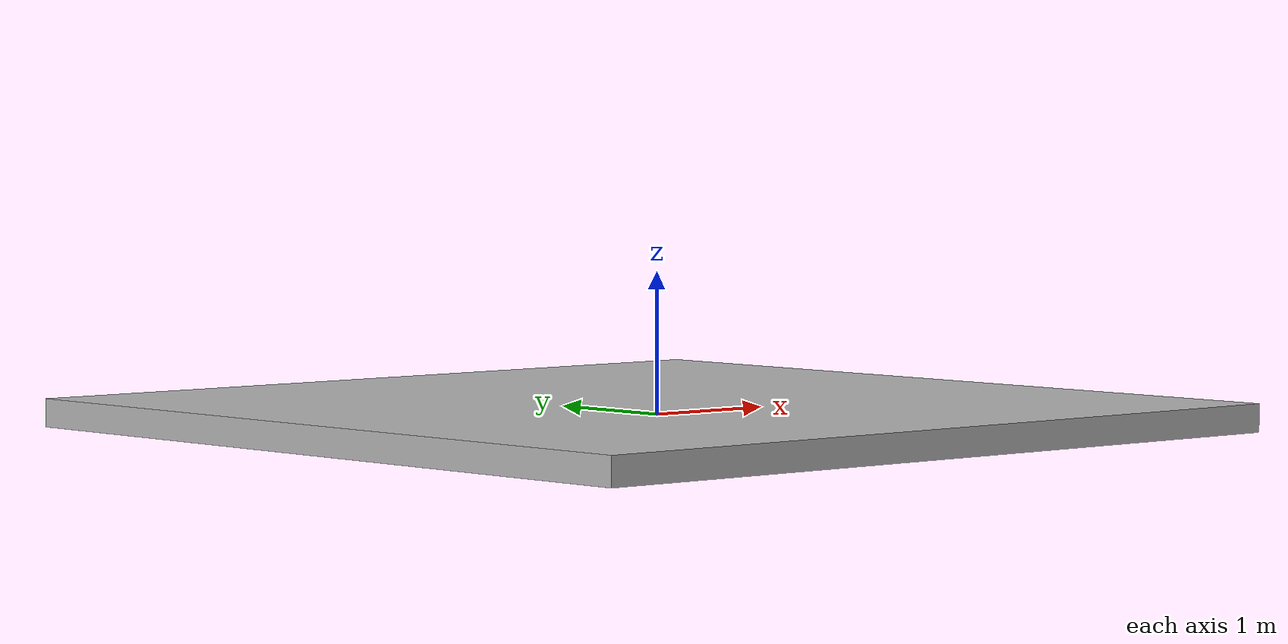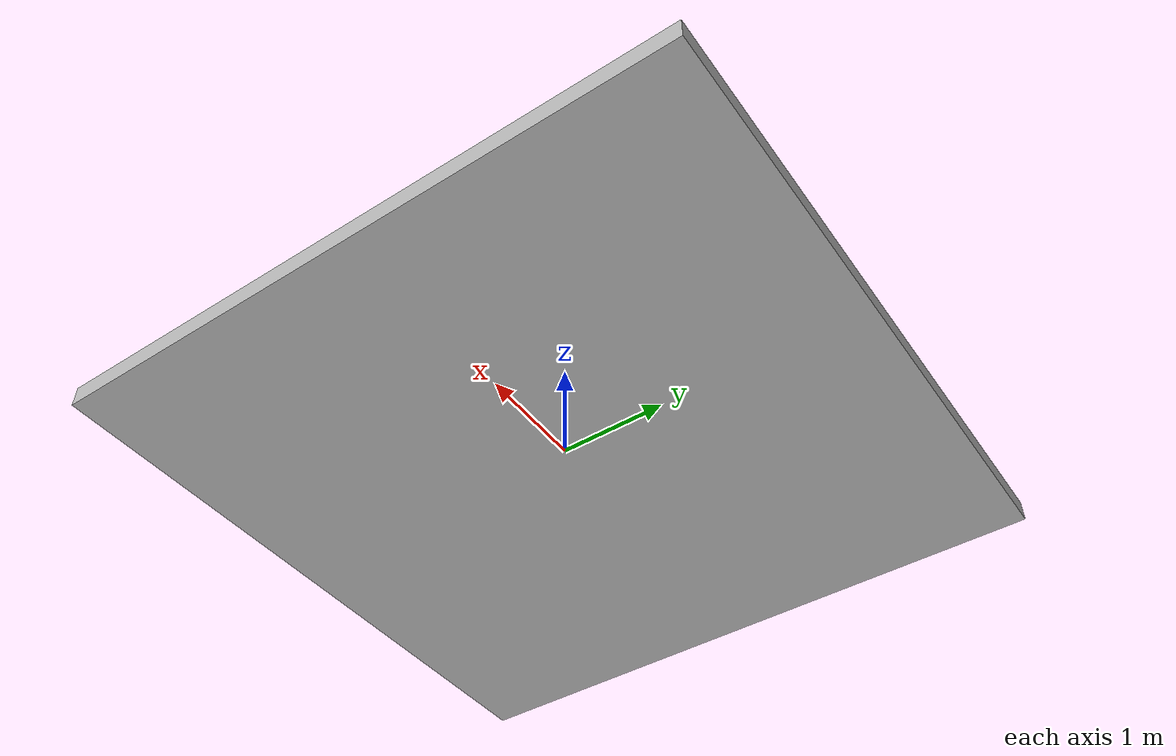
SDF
<?xml version='1.0'?>
<sdf version="1.6">
    <model name="sand_table">
        <static>true</static>
        <link name="link">
            <collision name="collision">
                <geometry>
                    <mesh>
                        <uri>package://ros_gz_example_description/models/sand_table/meshes/sand_table.stl</uri>
                        <scale>2 2 2</scale>
                    </mesh>
                </geometry>
            </collision>

            <visual name="visual">
                <geometry>
                    <mesh>
                        <uri>package://ros_gz_example_description/models/sand_table/meshes/sand_table.dae</uri>
                        <scale>2 2 2</scale>
                    </mesh>
                </geometry>
            </visual>
        </link>
    </model>
</sdf>
